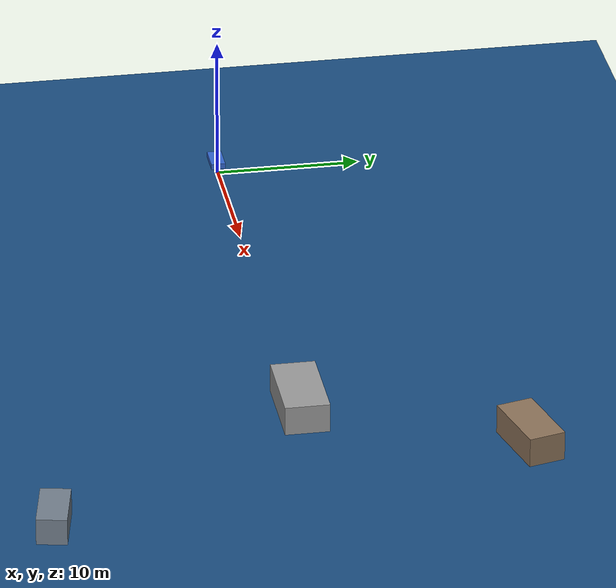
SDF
<?xml version="1.0"?>
<sdf version="1.10">
  <world name="radar_validation_world">
    <gravity>0 0 -9.81</gravity>

    <plugin
      filename="gz-sim-physics-system"
      name="gz::sim::systems::Physics"/>
    <plugin
      filename="gz-sim-user-commands-system"
      name="gz::sim::systems::UserCommands"/>
    <plugin
      filename="gz-sim-scene-broadcaster-system"
      name="gz::sim::systems::SceneBroadcaster"/>

    <light name="sun" type="directional">
      <cast_shadows>true</cast_shadows>
      <pose>0 0 100 0 0 0</pose>
      <diffuse>0.8 0.8 0.8 1</diffuse>
      <specular>0.2 0.2 0.2 1</specular>
      <direction>-0.2 0.3 -1</direction>
    </light>

    <!-- 静态自车：避免重力导致传感器下沉；海杂波点由传感器位姿生成，下沉会在 RViz 中表现为点云“坠落”。 -->
    <model name="ego_usv">
      <static>true</static>
      <pose>0 0 1.0 0 0 0</pose>

      <link name="base_link">
        <inertial>
          <mass>200.0</mass>
          <inertia>
            <ixx>50.0</ixx>
            <iyy>50.0</iyy>
            <izz>80.0</izz>
            <ixy>0</ixy>
            <ixz>0</ixz>
            <iyz>0</iyz>
          </inertia>
        </inertial>

        <!-- Keep collision low profile so rays are less likely to self-hit. -->
        <collision name="hull_collision">
          <geometry>
            <box>
              <size>2.0 1.0 0.4</size>
            </box>
          </geometry>
          <pose>-0.7 0 -0.4 0 0 0</pose>
        </collision>

        <visual name="hull_visual">
          <geometry>
            <box>
              <size>2.0 1.0 0.4</size>
            </box>
          </geometry>
          <pose>-0.7 0 -0.4 0 0 0</pose>
          <material>
            <ambient>0.1 0.2 0.5 1</ambient>
            <diffuse>0.2 0.4 0.8 1</diffuse>
          </material>
        </visual>
      </link>

      <plugin filename="libusv_4d_radar_plugin.so" name="usv_4d_radar_gz::FourDRadarPlugin">
        <topic>/radar/points_4d</topic>
        <frame_id>world</frame_id>
        <ego_link_name>base_link</ego_link_name>

        <horizontal_fov_deg>100.0</horizontal_fov_deg>
        <vertical_fov_deg>30.0</vertical_fov_deg>
        <azimuth_resolution_deg>1.0</azimuth_resolution_deg>
        <elevation_resolution_deg>1.0</elevation_resolution_deg>

        <min_range>0.8</min_range>
        <max_range>120.0</max_range>
        <update_rate_hz>10.0</update_rate_hz>

        <base_rcs>12.0</base_rcs>
        <rcs_distance_decay>0.01</rcs_distance_decay>

        <enable_sea_clutter>false</enable_sea_clutter>
        <sea_clutter_probability>0.0</sea_clutter_probability>
        <sea_clutter_amplitude>0.0</sea_clutter_amplitude>

        <perception_range_limit_m>300.0</perception_range_limit_m>
        <enable_range_measurement_error>false</enable_range_measurement_error>
        <enable_azimuth_measurement_error>false</enable_azimuth_measurement_error>
        <range_error_at_reference_m>0.66</range_error_at_reference_m>
        <range_error_reference_m>300.0</range_error_reference_m>
        <azimuth_error_std_deg>0.5</azimuth_error_std_deg>
      </plugin>
    </model>

    <!-- 目标 1：正前方 -->
    <model name="target_ship_metal">
      <static>true</static>
      <pose>35 0 1.0 0 0 0</pose>
      <link name="link">
        <collision name="collision">
          <geometry>
            <box>
              <size>6 3 2</size>
            </box>
          </geometry>
        </collision>
        <visual name="visual">
          <geometry>
            <box>
              <size>6 3 2</size>
            </box>
          </geometry>
          <material>
            <ambient>0.4 0.4 0.4 1</ambient>
            <diffuse>0.6 0.6 0.6 1</diffuse>
          </material>
        </visual>
      </link>
    </model>

    <!-- 目标 2：右前方（仍在水平 FOV 内） -->
    <model name="target_ship_metal_port">
      <static>true</static>
      <pose>42 14 1.0 0 0 0.25</pose>
      <link name="link">
        <collision name="collision">
          <geometry>
            <box>
              <size>5 2.5 2</size>
            </box>
          </geometry>
        </collision>
        <visual name="visual">
          <geometry>
            <box>
              <size>5 2.5 2</size>
            </box>
          </geometry>
          <material>
            <ambient>0.45 0.35 0.3 1</ambient>
            <diffuse>0.55 0.45 0.35 1</diffuse>
          </material>
        </visual>
      </link>
    </model>

    <!-- 目标 3：左前方 -->
    <model name="target_ship_metal_starboard">
      <static>true</static>
      <pose>48 -18 1.2 0 0 -0.2</pose>
      <link name="link">
        <collision name="collision">
          <geometry>
            <box>
              <size>4 2 1.8</size>
            </box>
          </geometry>
        </collision>
        <visual name="visual">
          <geometry>
            <box>
              <size>4 2 1.8</size>
            </box>
          </geometry>
          <material>
            <ambient>0.35 0.4 0.45 1</ambient>
            <diffuse>0.45 0.5 0.55 1</diffuse>
          </material>
        </visual>
      </link>
    </model>

    <!-- Optional sea plane visual so you can understand scene orientation. -->
    <model name="water_surface">
      <static>true</static>
      <pose>0 0 0 0 0 0</pose>
      <link name="water_link">
        <visual name="water_visual">
          <geometry>
            <plane>
              <normal>0 0 1</normal>
              <size>300 300</size>
            </plane>
          </geometry>
          <material>
            <ambient>0.1 0.2 0.3 1</ambient>
            <diffuse>0.1 0.3 0.5 1</diffuse>
          </material>
        </visual>
      </link>
    </model>
  </world>
</sdf>
